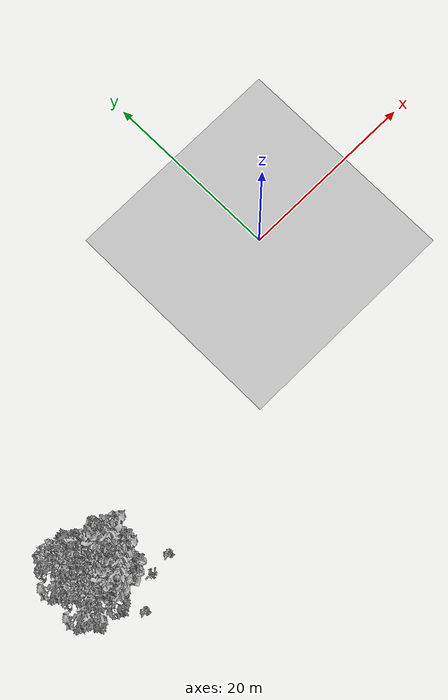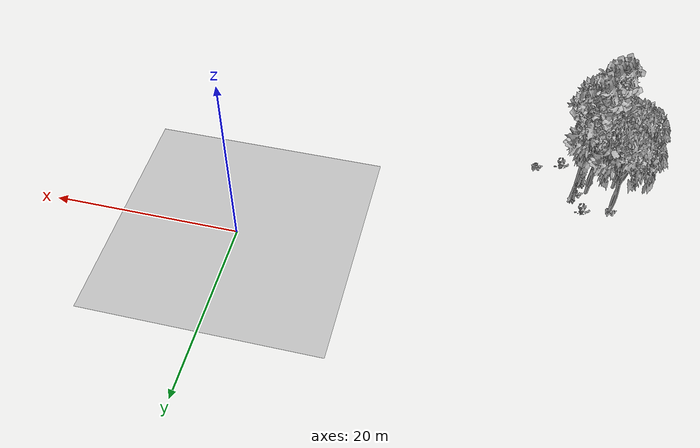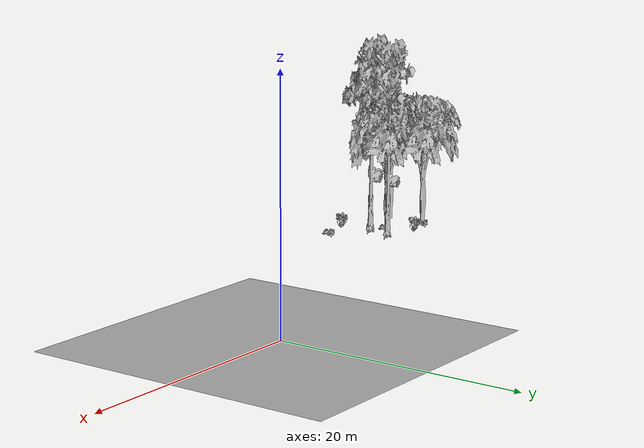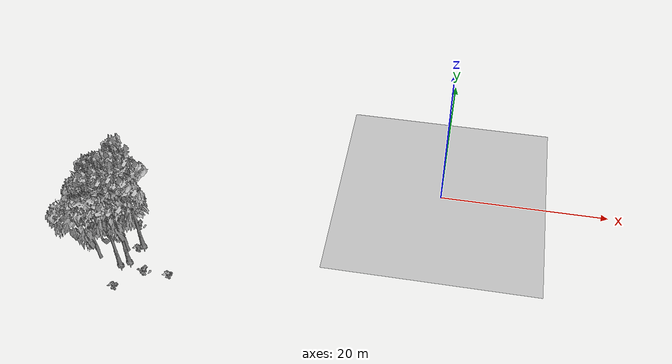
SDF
<sdf version="1.7">
 <world name="default">
  <model name="ground_plane">
   <static>1</static>
   <link name="link">
    <collision name="collision">
     <pose>-50 0 0 0 -0 0</pose>
     <geometry><plane><normal>0 0 1</normal><size>80 80</size></plane></geometry>
     <surface><contact><ode><min_depth>0.01</min_depth><max_vel>0</max_vel></ode></contact></surface>
    </collision>
    <visual name="grass">
     <cast_shadows>0</cast_shadows>
     <geometry>
      <mesh>
       <scale>0.46714285714285714 0.46714285714285714 0.1</scale>
       <uri>file://grass_plane/meshes/grass_plane.dae</uri>
      </mesh>
     </geometry>
    </visual>
   </link>
  </model>
  <model name="Tree 30">
   <static>1</static>
   <pose>-37.60010539691344 -11.778942954884826 0 1.57079 -0 0</pose>
   <link name="link">
    <collision name="collision">
     <geometry><mesh><scale>3.5 5 3.5</scale><uri>model://tree_2/meshes/tree_2.obj</uri></mesh></geometry>
    </collision>
    <visual name="visual">
     <geometry><mesh><scale>3.5 5 3.5</scale><uri>model://tree_2/meshes/tree_2.obj</uri></mesh></geometry>
    </visual>
   </link>
  </model>
  <model name="Tree 101">
   <static>1</static>
   <pose>-37.808036590219125 -15.481324088362864 0 1.57079 -0 0</pose>
   <link name="link">
    <collision name="collision">
     <geometry><mesh><scale>3.5 5 3.5</scale><uri>model://tree_2/meshes/tree_2.obj</uri></mesh></geometry>
    </collision>
    <visual name="visual">
     <geometry><mesh><scale>3.5 5 3.5</scale><uri>model://tree_2/meshes/tree_2.obj</uri></mesh></geometry>
    </visual>
   </link>
  </model>
  <model name="Tree 339">
   <static>1</static>
   <pose>-33.52396424128018 -12.956355465422735 0 1.57079 -0 0</pose>
   <link name="link">
    <collision name="collision">
     <geometry><mesh><scale>3.5 5 3.5</scale><uri>model://tree_9/meshes/tree_9.obj</uri></mesh></geometry>
    </collision>
    <visual name="visual">
     <geometry><mesh><scale>3.5 5 3.5</scale><uri>model://tree_9/meshes/tree_9.obj</uri></mesh></geometry>
    </visual>
   </link>
  </model>
  <model name="Tree 400">
   <static>1</static>
   <pose>-35.02261799553653 -14.007323515810413 0 1.57079 -0 0</pose>
   <link name="link">
    <collision name="collision">
     <geometry><mesh><scale>3.5 5 3.5</scale><uri>model://tree_2/meshes/tree_2.obj</uri></mesh></geometry>
    </collision>
    <visual name="visual">
     <geometry><mesh><scale>3.5 5 3.5</scale><uri>model://tree_2/meshes/tree_2.obj</uri></mesh></geometry>
    </visual>
   </link>
  </model>
  <model name="Tree 416">
   <static>1</static>
   <pose>-34.35425851476754 -15.391716566468673 0 1.57079 -0 0</pose>
   <link name="link">
    <collision name="collision">
     <geometry><mesh><scale>3.5 5 3.5</scale><uri>model://tree_9/meshes/tree_9.obj</uri></mesh></geometry>
    </collision>
    <visual name="visual">
     <geometry><mesh><scale>3.5 5 3.5</scale><uri>model://tree_9/meshes/tree_9.obj</uri></mesh></geometry>
    </visual>
   </link>
  </model>
  <model name="Tree 490">
   <static>1</static>
   <pose>-35.223638225582306 -15.977389800845003 0 1.57079 -0 0</pose>
   <link name="link">
    <collision name="collision">
     <geometry><mesh><scale>3.5 5 3.5</scale><uri>model://tree_9/meshes/tree_9.obj</uri></mesh></geometry>
    </collision>
    <visual name="visual">
     <geometry><mesh><scale>3.5 5 3.5</scale><uri>model://tree_9/meshes/tree_9.obj</uri></mesh></geometry>
    </visual>
   </link>
  </model>
  <model name="Bush 189">
   <static>1</static>
   <pose>-33.961899420518215 -13.531418543053135 0 1.57079 -0 0</pose>
   <link name="link">
    <collision name="collision">
     <geometry><mesh><scale>2 2 2</scale><uri>model://bush_2/meshes/bush_2.obj</uri></mesh></geometry>
     <surface><contact><collide_without_contact>false</collide_without_contact></contact></surface>
    </collision>
    <visual name="visual">
     <geometry><mesh><scale>2 2 2</scale><uri>model://bush_2/meshes/bush_2.obj</uri></mesh></geometry>
    </visual>
   </link>
  </model>
  <model name="Bush 300">
   <static>1</static>
   <pose>-34.65623291559095 -10.85081205472261 0 1.57079 -0 0</pose>
   <link name="link">
    <collision name="collision">
     <geometry><mesh><scale>2 2 2</scale><uri>model://bush_4/meshes/bush_4.obj</uri></mesh></geometry>
     <surface><contact><collide_without_contact>false</collide_without_contact></contact></surface>
    </collision>
    <visual name="visual">
     <geometry><mesh><scale>2 2 2</scale><uri>model://bush_4/meshes/bush_4.obj</uri></mesh></geometry>
    </visual>
   </link>
  </model>
  <model name="Bush 339">
   <static>1</static>
   <pose>-31.975415215898202 -16.99916132466165 0 1.57079 -0 0</pose>
   <link name="link">
    <collision name="collision">
     <geometry><mesh><scale>2 2 2</scale><uri>model://bush_4/meshes/bush_4.obj</uri></mesh></geometry>
     <surface><contact><collide_without_contact>false</collide_without_contact></contact></surface>
    </collision>
    <visual name="visual">
     <geometry><mesh><scale>2 2 2</scale><uri>model://bush_4/meshes/bush_4.obj</uri></mesh></geometry>
    </visual>
   </link>
  </model>
  <model name="Bush 393">
   <static>1</static>
   <pose>-34.9619887118493 -18.998760728773235 0 1.57079 -0 0</pose>
   <link name="link">
    <collision name="collision">
     <geometry><mesh><scale>2 2 2</scale><uri>model://bush_2/meshes/bush_2.obj</uri></mesh></geometry>
     <surface><contact><collide_without_contact>false</collide_without_contact></contact></surface>
    </collision>
    <visual name="visual">
     <geometry><mesh><scale>2 2 2</scale><uri>model://bush_2/meshes/bush_2.obj</uri></mesh></geometry>
    </visual>
   </link>
  </model>
  <model name="Bush 455">
   <static>1</static>
   <pose>-29.378906357335897 -16.566390799566484 0 1.57079 -0 0</pose>
   <link name="link">
    <collision name="collision">
     <geometry><mesh><scale>2 2 2</scale><uri>model://bush_2/meshes/bush_2.obj</uri></mesh></geometry>
     <surface><contact><collide_without_contact>false</collide_without_contact></contact></surface>
    </collision>
    <visual name="visual">
     <geometry><mesh><scale>2 2 2</scale><uri>model://bush_2/meshes/bush_2.obj</uri></mesh></geometry>
    </visual>
   </link>
  </model>
  <model name="Bush 582">
   <static>1</static>
   <pose>-37.644970782472946 -11.855034723464726 0 1.57079 -0 0</pose>
   <link name="link">
    <collision name="collision">
     <geometry><mesh><scale>2 2 2</scale><uri>model://bush_2/meshes/bush_2.obj</uri></mesh></geometry>
     <surface><contact><collide_without_contact>false</collide_without_contact></contact></surface>
    </collision>
    <visual name="visual">
     <geometry><mesh><scale>2 2 2</scale><uri>model://bush_2/meshes/bush_2.obj</uri></mesh></geometry>
    </visual>
   </link>
  </model>
 </world>
</sdf>
